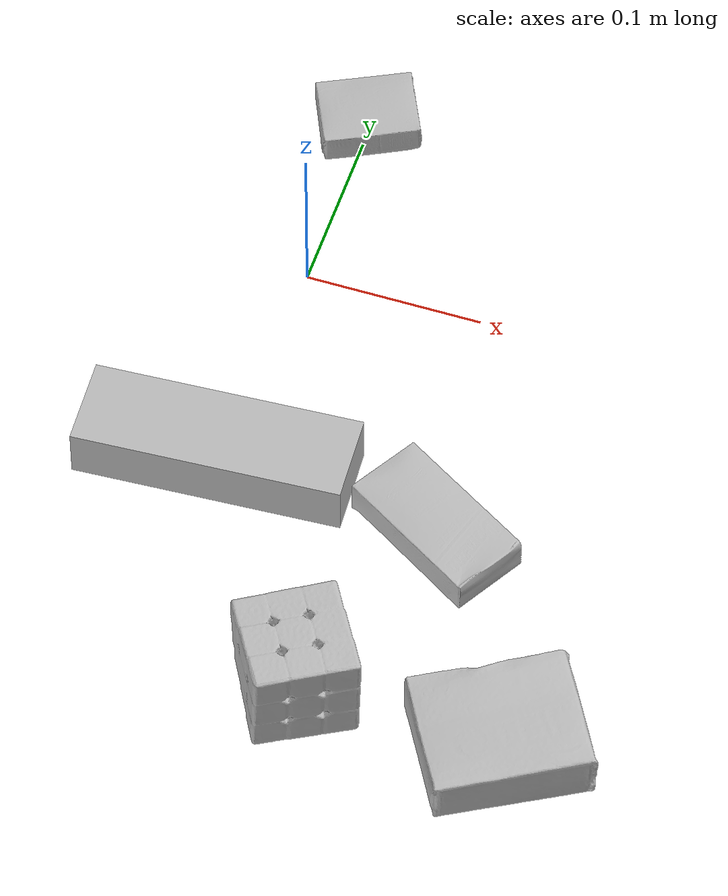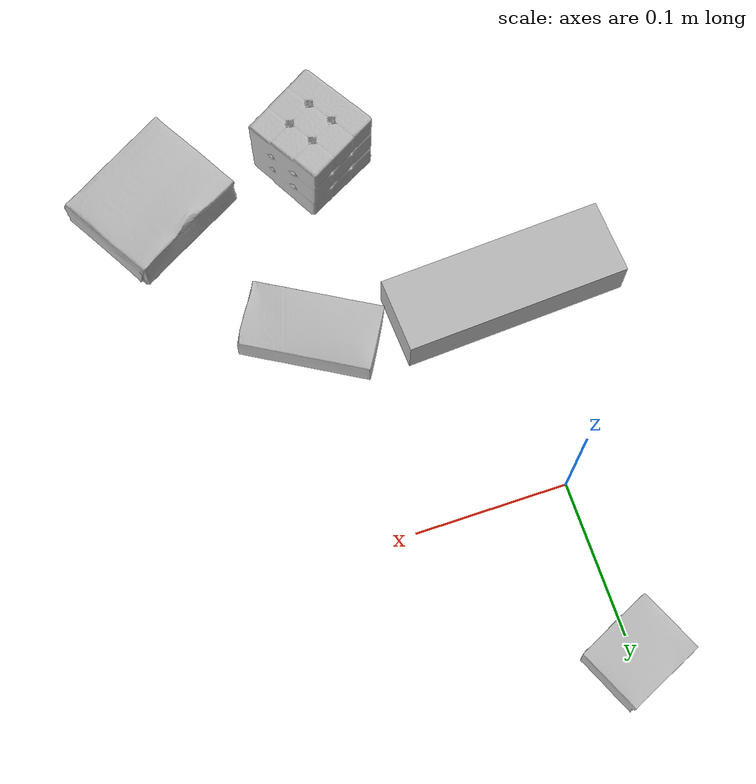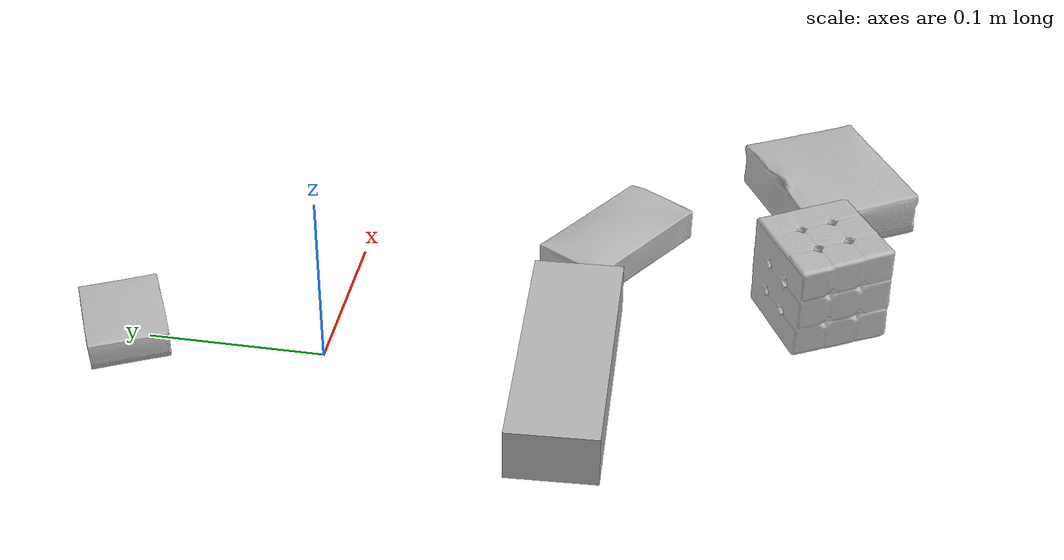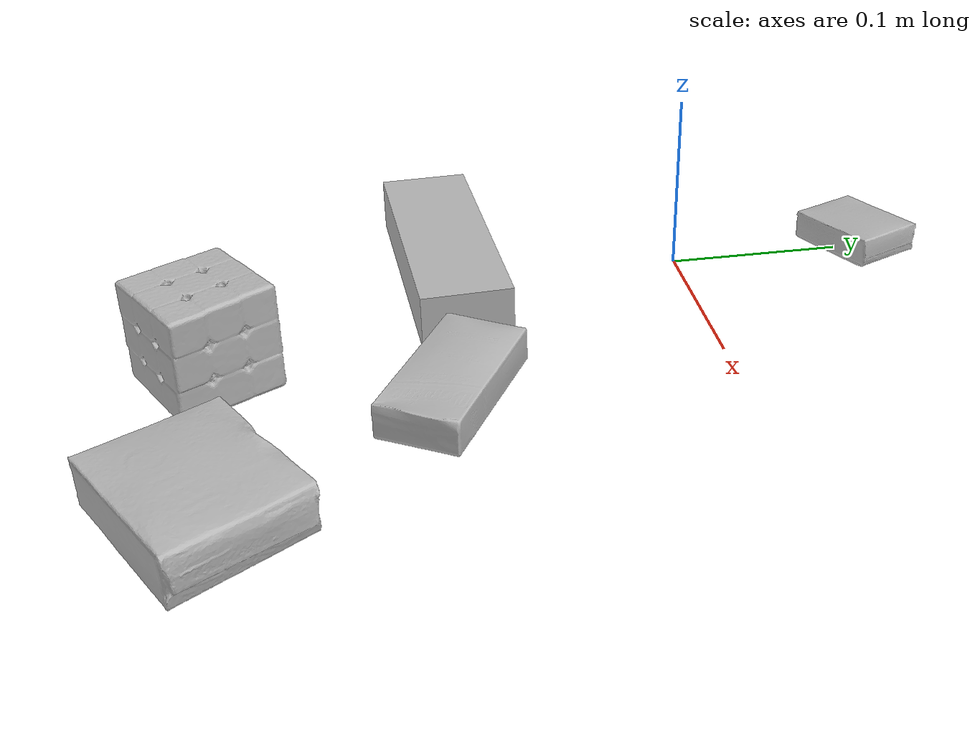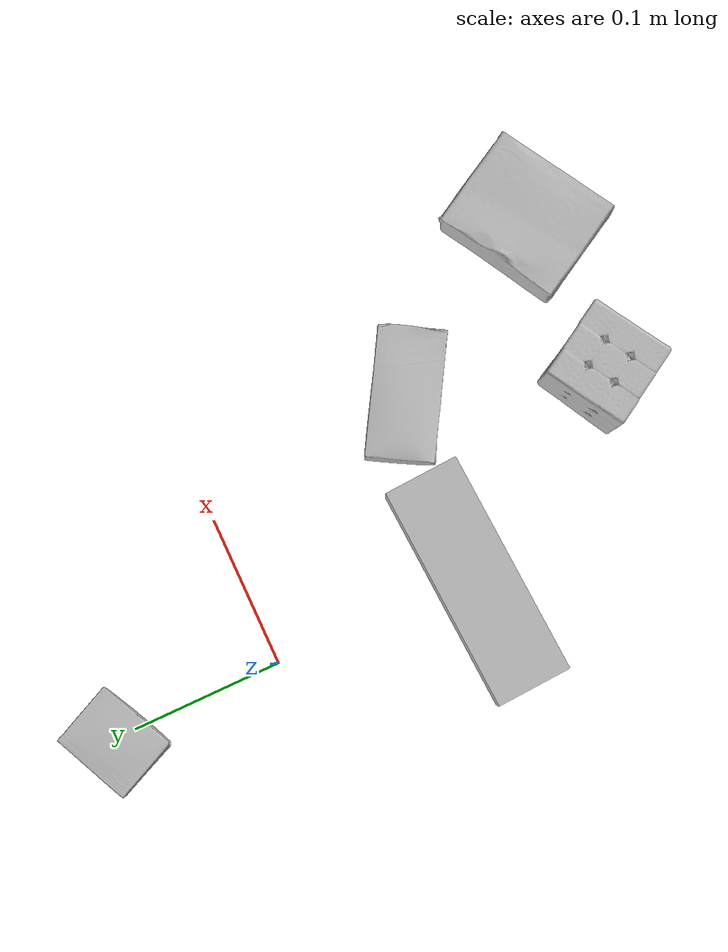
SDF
<sdf version="1.4">
  <world name="default">
    <light name="light1" type="point">
      <pose>0 0 1 0 0 0</pose>
      <diffuse>3 3 3 1</diffuse>
      <specular>3 3 3 1</specular>
    </light>
    <light name="light2" type="point">
      <pose>0 0.5 2 0 0 0</pose>
      <diffuse>1 1 1 1</diffuse>
      <specular>1 1 1 1</specular>
    </light>
    <light name="light3" type="point">
      <pose>0 0.5 2 0 0 0</pose>
      <diffuse>3 3 3 1</diffuse>
      <specular>3 3 3 1</specular>
    </light>
    <scene>
      <ambient>0.7 0.7 0.7</ambient>
    </scene>
    <model name="box1">
      <link name="link_box1">
        <collision name="default">
          <geometry>
            <mesh>
              <uri>model://sugar_box/collision_meshes/collision.obj</uri>
              <scale>0.5 0.5 0.5</scale>
            </mesh>
          </geometry>
          <surface>
            <friction>
              <ode>
                <mu>0.5</mu>
                <mu2>0.5</mu2>
              </ode>
            </friction>
          <contact>
        <ode>
            <max_vel>0</max_vel>
            <min_depth>0.0001</min_depth>
            <kp>1e8</kp>
        </ode>
    </contact></surface>
        </collision>
        <visual name="default">
          <geometry>
            <mesh>
              <uri>model://sugar_box/visual_meshes/visual.dae</uri>
              <scale>0.5 0.5 0.5</scale>
            </mesh>
          </geometry>
        </visual>
        <inertial>
          <mass>0.06211651861667633</mass>
          <pose>0.0005171863595023751 1.9245546354795806e-05 -0.00018182402709499002 -0.00040462630054681676 0.0010506634057476226 0.0026153787889456807</pose>
          <inertia>
            <ixx>1.2938825e-05</ixx>
            <iyy>4.1820942e-05</iyy>
            <izz>5.0064667e-05</izz>
            <ixy>0</ixy>
            <ixz>0</ixz>
            <iyz>0</iyz>
          </inertia>
        </inertial>
      </link>
      <pose>0.12115532159805298 -0.1458137184381485 0.011399301700294018 0.0007754854306253591 -0.023433248182799512 2.602936040194993</pose>
    </model>
    <model name="box2">
      <link name="link_box2">
        <collision name="default">
          <geometry>
            <mesh>
              <uri>model://rubiks_cube/collision_meshes/collision.obj</uri>
              <scale>1.0 1.0 1.0</scale>
            </mesh>
          </geometry>
          <surface>
            <friction>
              <ode>
                <mu>0.5</mu>
                <mu2>0.5</mu2>
              </ode>
            </friction>
          <contact>
        <ode>
            <max_vel>0</max_vel>
            <min_depth>0.0001</min_depth>
            <kp>1e8</kp>
        </ode>
    </contact></surface>
        </collision>
        <visual name="default">
          <geometry>
            <mesh>
              <uri>model://rubiks_cube/visual_meshes/visual.dae</uri>
              <scale>1.0 1.0 1.0</scale>
            </mesh>
          </geometry>
        </visual>
        <inertial>
          <mass>0.2700360119342804</mass>
          <pose>2.6721041649580002e-05 5.256967051536776e-05 -7.264316536748083e-06 -0.05467324422766238 -0.0981422115654675 -0.034454566623261795</pose>
          <inertia>
            <ixx>0.00014921304</ixx>
            <iyy>0.00014851718</iyy>
            <izz>0.00015044949</izz>
            <ixy>0</ixy>
            <ixz>0</ixz>
            <iyz>0</iyz>
          </inertia>
        </inertial>
      </link>
      <pose>0.0821622684597969 -0.2650776207447052 0.02867898717522621 -2.7765542081968997e-06 -7.257204415326694e-07 -1.03605824109104</pose>
    </model>
    <model name="box3">
      <link name="link_box3">
        <collision name="default">
          <geometry>
            <mesh>
              <uri>model://jenga/collision_meshes/collision.obj</uri>
              <scale>1.0 1.0 1.0</scale>
            </mesh>
          </geometry>
          <surface>
            <friction>
              <ode>
                <mu>0.5</mu>
                <mu2>0.5</mu2>
              </ode>
            </friction>
          <contact>
        <ode>
            <max_vel>0</max_vel>
            <min_depth>0.0001</min_depth>
            <kp>1e8</kp>
        </ode>
    </contact></surface>
        </collision>
        <visual name="default">
          <geometry>
            <mesh>
              <uri>model://jenga/visual_meshes/visual.dae</uri>
              <scale>1.0 1.0 1.0</scale>
            </mesh>
          </geometry>
        </visual>
        <inertial>
          <mass>0.12586519122123718</mass>
          <pose>-2.502855807051674e-07 -0.00010250010382151231 -4.0923401684267446e-05 0.0 -7.342154049184251e-07 0.0</pose>
          <inertia>
            <ixx>3.482995e-05</ixx>
            <iyy>0.0002360068</iyy>
            <izz>0.00025195733</izz>
            <ixy>0</ixy>
            <ixz>0</ixz>
            <iyz>0</iyz>
          </inertia>
        </inertial>
      </link>
      <pose>-0.005802196450531483 -0.13533717393875122 0.014999995008111 1.6818765801373088e-08 3.01015752664e-09 0.05578917971358672</pose>
    </model>
    <model name="box4">
      <link name="link_box4">
        <collision name="default">
          <geometry>
            <mesh>
              <uri>model://gelatin_box/collision_meshes/collision.obj</uri>
              <scale>1.0 1.0 1.0</scale>
            </mesh>
          </geometry>
          <surface>
            <friction>
              <ode>
                <mu>0.5</mu>
                <mu2>0.5</mu2>
              </ode>
            </friction>
          <contact>
        <ode>
            <max_vel>0</max_vel>
            <min_depth>0.0001</min_depth>
            <kp>1e8</kp>
        </ode>
    </contact></surface>
        </collision>
        <visual name="default">
          <geometry>
            <mesh>
              <uri>model://gelatin_box/visual_meshes/visual.dae</uri>
              <scale>1.0 1.0 1.0</scale>
            </mesh>
          </geometry>
        </visual>
        <inertial>
          <mass>0.0925464928150177</mass>
          <pose>0.0004319618456065655 0.00011156871914863586 -0.0003640321083366871 -0.0010503719798216618 -0.004755819622564704 0.01644055760929568</pose>
          <inertia>
            <ixx>6.533027e-05</ixx>
            <iyy>4.6665074e-05</iyy>
            <izz>9.9447236e-05</izz>
            <ixy>0</ixy>
            <ixz>0</ixz>
            <iyz>0</iyz>
          </inertia>
        </inertial>
      </link>
      <pose>0.19378119707107544 -0.2643742263317108 0.015168307349085808 0.005597388176397696 -0.007304433670525873 2.0861375128495547</pose>
    </model>
    <model name="box5">
      <link name="link_box5">
        <collision name="default">
          <geometry>
            <mesh>
              <uri>model://pudding_box/collision_meshes/collision.obj</uri>
              <scale>0.5 0.5 0.5</scale>
            </mesh>
          </geometry>
          <surface>
            <friction>
              <ode>
                <mu>0.5</mu>
                <mu2>0.5</mu2>
              </ode>
            </friction>
          <contact>
        <ode>
            <max_vel>0</max_vel>
            <min_depth>0.0001</min_depth>
            <kp>1e8</kp>
        </ode>
    </contact></surface>
        </collision>
        <visual name="default">
          <geometry>
            <mesh>
              <uri>model://pudding_box/visual_meshes/visual.dae</uri>
              <scale>0.5 0.5 0.5</scale>
            </mesh>
          </geometry>
        </visual>
        <inertial>
          <mass>0.0266704261302948</mass>
          <pose>0.00024474109522998333 0.00040339428232982755 -0.0002594413817860186 0.005213101812636465 -0.006603797316727521 0.020079823300208206</pose>
          <inertia>
            <ixx>7.5373864e-06</ixx>
            <iyy>5.0712065e-06</iyy>
            <izz>1.113092e-05</izz>
            <ixy>0</ixy>
            <ixz>0</ixz>
            <iyz>0</iyz>
          </inertia>
        </inertial>
      </link>
      <pose>-0.0017266834620386362 0.11322525888681412 0.00986290629953146 0.022348485475055423 -0.011391742182534097 -1.1425886280722612</pose>
    </model>
  <physics type="ode">
      <max_contacts>50</max_contacts>
      <ode>
        <solver>
          <type>quick</type>
          <iters>75</iters>
        </solver>
        <constraints>
          <contact_max_correcting_vel>0</contact_max_correcting_vel>
          <contact_surface_layer>0</contact_surface_layer>
        </constraints>
      </ode>
    </physics></world>
</sdf>
